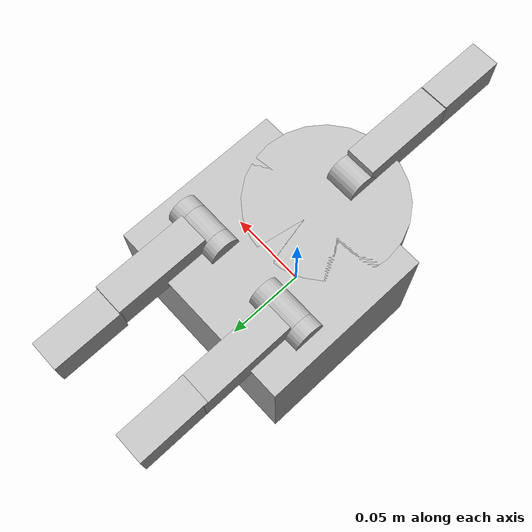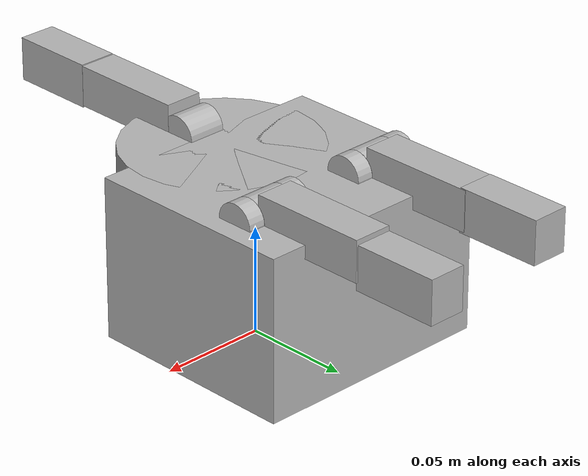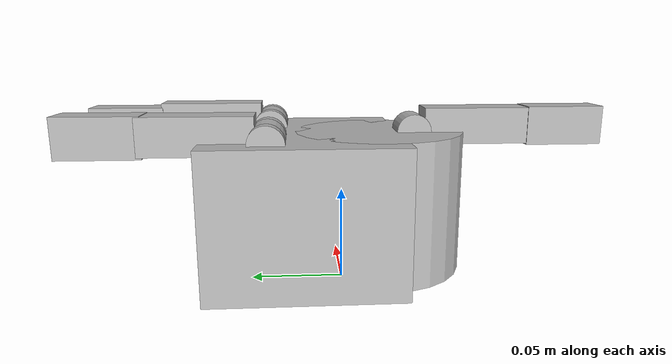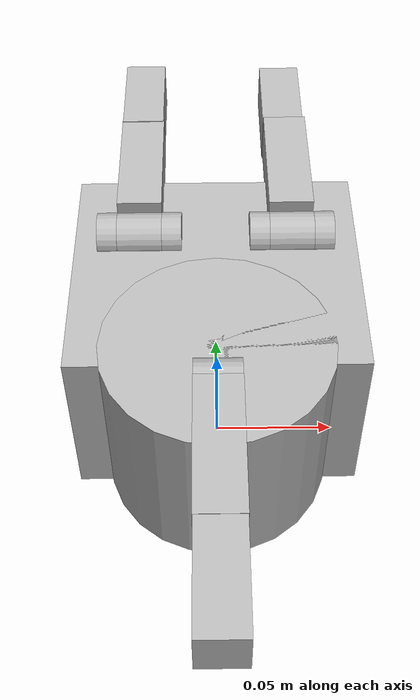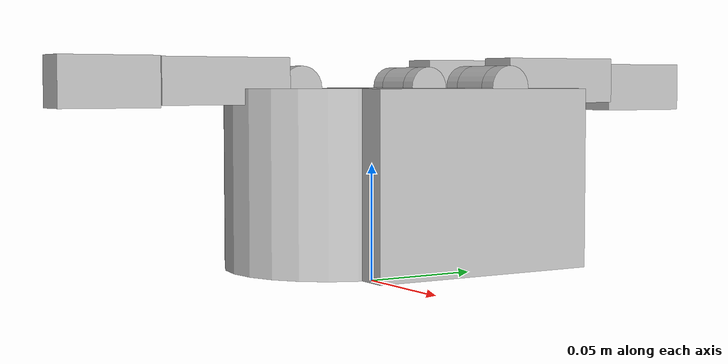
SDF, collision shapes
<?xml version="1.0" ?>
<sdf version="1.5">
  <model name="irobot_hand">
    <static>false</static>
<link name="base_link">
      <inertial>
        <mass>0.1</mass>
        <inertia>
          <ixx>0.001000</ixx>
          <ixy>0</ixy>
          <ixz>0</ixz>
          <iyy>0.001000</iyy>
          <iyz>0</iyz>
          <izz>0.001000</izz>
        </inertia>
      </inertial>
      <collision name="collision1">
        <pose>0 0.02 0.045 0 0 0</pose>
        <geometry>
          <box>
            <size>0.114 0.1 0.075</size>
          </box>
        </geometry>
      </collision>
      <collision name="collision2">
        <pose>0 -0.02 0.045 0 0 0</pose>
        <geometry>
          <cylinder>
            <radius>0.0448</radius>
            <length>0.075</length>
          </cylinder>
        </geometry>
      </collision>
      <visual name="base_link_vis">
        <pose>0 -0.038000 -0.034000 0 0 0</pose>
        <geometry>
          <mesh>
            <uri>model://irobot_hand/meshes/palm.stl</uri>
          </mesh>
        </geometry>
      </visual>
    </link>
    <link name="finger0/base_rotation_link">
      <pose>0.030750 0.038000 0.069477 0 0 0</pose>
      <inertial>
        <mass>0.1</mass>
        <inertia>
          <ixx>0.001000</ixx>
          <ixy>0</ixy>
          <ixz>0</ixz>
          <iyy>0.001000</iyy>
          <iyz>0</iyz>
          <izz>0.001000</izz>
        </inertia>
      </inertial>
      <collision name="collision_1">
        <pose>0 0 -.0025 0 0 0</pose>
        <geometry>
          <cylinder>
            <length>0.0145</length>
            <radius>0.025</radius>
          </cylinder>
        </geometry>
      </collision>
      <collision name="collision_2">
        <pose>0 0 -.0104 0 0 0</pose>
        <geometry>
          <cylinder>
            <length>0.0145</length>
            <radius>0.0165</radius>
          </cylinder>
        </geometry>
      </collision>
      <collision name="collision_3">
        <pose>0 0 .0135 1.5707 0 1.5707</pose>
        <geometry>
          <cylinder>
            <length>0.02</length>
            <radius>0.002</radius>
          </cylinder>
        </geometry>
      </collision>
      <collision name="collision_4">
        <pose>0.013 0 .0135 1.5707 0 1.5707</pose>
        <geometry>
          <cylinder>
            <length>0.008</length>
            <radius>0.009</radius>
          </cylinder>
        </geometry>
      </collision>
      <collision name="collision_5">
        <pose>-0.013 0 .0135 1.5707 0 1.5707</pose>
        <geometry>
          <cylinder>
            <length>0.008</length>
            <radius>0.009</radius>
          </cylinder>
        </geometry>
      </collision>
      <visual name="finger0/base_rotation_link_vis">
        <pose>0 0 0 1.57 0 0</pose>
        <geometry>
          <mesh>
            <uri>model://irobot_hand/meshes/finger_base.stl</uri>
          </mesh>
        </geometry>
      </visual>
    </link>
    <link name="finger0/proximal_link">
      <pose>0.030750 0.038000 0.082977 1.57 0 -3.140000</pose>
      <inertial>
        <mass>0.1</mass>
        <inertia>
          <ixx>0.001000</ixx>
          <ixy>0</ixy>
          <ixz>0</ixz>
          <iyy>0.001000</iyy>
          <iyz>0</iyz>
          <izz>0.001000</izz>
        </inertia>
      </inertial>
      <collision name="collision1">
        <pose>0 0.0028 0.033 0 0 0</pose>
        <geometry>
          <box>
            <size>0.018 0.019 0.055</size>
          </box>
        </geometry>
      </collision>
      <collision name="collision2">
        <pose>0 0 0 0 1.5707 0</pose>
        <geometry>
          <cylinder>
            <radius>0.009</radius>
            <length>0.018</length>
          </cylinder>
        </geometry>
      </collision>
      <visual name="visual">
        <pose>0 0 0 1.57 -1.57 0</pose>
        <geometry>
          <mesh>
            <uri>model://irobot_hand/meshes/finger_proximal.stl</uri>
          </mesh>
        </geometry>
      </visual>
    </link>

    <link name="finger0/distal_link">
      <pose>0.03026 0.09900 0.08039 1.57 0 -3.140000</pose>
      <inertial>
        <mass>0.1</mass>
        <inertia>
          <ixx>0.001000</ixx>
          <ixy>0</ixy>
          <ixz>0</ixz>
          <iyy>0.001000</iyy>
          <iyz>0</iyz>
          <izz>0.001000</izz>
        </inertia>
      </inertial>
      <collision name="collision">
        <pose>0 0.0025 0.019 3.141590 0.001593 3.141590</pose>
        <geometry>
          <box>
            <size>0.0175 0.02023 0.04043</size>
          </box>
        </geometry>
      </collision>
      <visual name="visual">
        <pose>0 0 0 3.141590 0.001593 3.141590</pose>
        <geometry>
          <mesh>
            <uri>model://irobot_hand/meshes/finger_distal.stl</uri>
          </mesh>
        </geometry>
      </visual>
    </link>

    <link name="finger1/base_rotation_link">
      <pose>-0.030750 0.038000 0.069477 0 0 0</pose>
      <inertial>
        <mass>0.1</mass>
        <inertia>
          <ixx>0.001000</ixx>
          <ixy>0</ixy>
          <ixz>0</ixz>
          <iyy>0.001000</iyy>
          <iyz>0</iyz>
          <izz>0.001000</izz>
        </inertia>
      </inertial>
      <collision name="collision_1">
        <pose>0 0 -.0025 0 0 0</pose>
        <geometry>
          <cylinder>
            <length>0.0145</length>
            <radius>0.025</radius>
          </cylinder>
        </geometry>
      </collision>
      <collision name="collision_2">
        <pose>0 0 -.0104 0 0 0</pose>
        <geometry>
          <cylinder>
            <length>0.0145</length>
            <radius>0.0165</radius>
          </cylinder>
        </geometry>
      </collision>
      <collision name="collision_3">
        <pose>0 0 .0135 1.5707 0 1.5707</pose>
        <geometry>
          <cylinder>
            <length>0.02</length>
            <radius>0.002</radius>
          </cylinder>
        </geometry>
      </collision>
      <collision name="collision_4">
        <pose>0.013 0 .0135 1.5707 0 1.5707</pose>
        <geometry>
          <cylinder>
            <length>0.008</length>
            <radius>0.009</radius>
          </cylinder>
        </geometry>
      </collision>
      <collision name="collision_5">
        <pose>-0.013 0 .0135 1.5707 0 1.5707</pose>
        <geometry>
          <cylinder>
            <length>0.008</length>
            <radius>0.009</radius>
          </cylinder>
        </geometry>
      </collision>
      <visual name="visual">
        <pose>0 0 0 1.57 0 0</pose>
        <geometry>
          <mesh>
            <uri>model://irobot_hand/meshes/finger_base.stl</uri>
          </mesh>
        </geometry>
      </visual>
    </link>

    <link name="finger1/proximal_link">
      <pose>-0.030750 0.038000 0.082977 1.57 0 -3.140000</pose>
      <inertial>
        <mass>0.1</mass>
        <inertia>
          <ixx>0.001000</ixx>
          <ixy>0</ixy>
          <ixz>0</ixz>
          <iyy>0.001000</iyy>
          <iyz>0</iyz>
          <izz>0.001000</izz>
        </inertia>
      </inertial>
      <collision name="collision1">
        <pose>0 0.0028 0.033 0 0 0</pose>
        <geometry>
          <box>
            <size>0.018 0.019 0.055</size>
          </box>
        </geometry>
      </collision>
      <collision name="collision2">
        <pose>0 0 0 0 1.5707 0</pose>
        <geometry>
          <cylinder>
            <radius>0.009</radius>
            <length>0.018</length>
          </cylinder>
        </geometry>
      </collision>
      <visual name="visual">
        <pose>0 0 0 1.57 -1.57 -0</pose>
        <geometry>
          <mesh>
            <uri>model://irobot_hand/meshes/finger_proximal.stl</uri>
          </mesh>
        </geometry>
      </visual>
    </link>

    <link name="finger1/distal_link">
      <pose>-0.030874 0.097000 0.083039 1.57 0 -3.140000</pose>
      <inertial>
        <mass>0.1</mass>
        <inertia>
          <ixx>0.001000</ixx>
          <ixy>0</ixy>
          <ixz>0</ixz>
          <iyy>0.001000</iyy>
          <iyz>0</iyz>
          <izz>0.001000</izz>
        </inertia>
      </inertial>
      <collision name="collision">
        <pose>0 0.0025 0.019 3.141590 0.001593 3.141590</pose>
        <geometry>
          <box>
            <size>0.0175 0.02023 0.04043</size>
          </box>
        </geometry>
      </collision>
      <visual name="visual">
        <pose>0 0 0 3.141590 0.001593 3.141590</pose>
        <geometry>
          <mesh>
            <uri>model://irobot_hand/meshes/finger_distal.stl</uri>
          </mesh>
        </geometry>
      </visual>
    </link>

    <link name="finger2/proximal_link">
      <pose>0 -0.038000 0.082755 1.57 0 0</pose>
      <inertial>
        <mass>0.1</mass>
        <inertia>
          <ixx>0.001000</ixx>
          <ixy>0</ixy>
          <ixz>0</ixz>
          <iyy>0.001000</iyy>
          <iyz>0</iyz>
          <izz>0.001000</izz>
        </inertia>
      </inertial>
      <collision name="collision1">
        <pose>0 0.0028 0.033 0 0 0</pose>
        <geometry>
          <box>
            <size>0.018 0.019 0.055</size>
          </box>
        </geometry>
      </collision>
      <collision name="collision2">
        <pose>0 0 0 0 1.5707 0</pose>
        <geometry>
          <cylinder>
            <radius>0.009</radius>
            <length>0.018</length>
          </cylinder>
        </geometry>
      </collision>
      <visual name="visual">
        <pose>0 0 0 1.57 -1.57 -0</pose>
        <geometry>
          <mesh>
            <uri>model://irobot_hand/meshes/finger_proximal.stl</uri>
          </mesh>
        </geometry>
      </visual>
    </link>

    <link name="finger2/distal_link">
      <pose>0 -0.100000 0.082817 1.57 0 0</pose>
      <inertial>
        <mass>0.1</mass>
        <inertia>
          <ixx>0.001000</ixx>
          <ixy>0</ixy>
          <ixz>0</ixz>
          <iyy>0.001000</iyy>
          <iyz>0</iyz>
          <izz>0.001000</izz>
        </inertia>
      </inertial>
      <collision name="collision">
        <pose>0 0.0025 0.019 3.141590 0.001593 3.141590</pose>
        <geometry>
          <box>
            <size>0.0175 0.02023 0.04043</size>
          </box>
        </geometry>
      </collision>
      <visual name="visual">
        <pose>0 0 0 3.141590 0.001593 3.141590</pose>
        <geometry>
          <mesh>
            <uri>model://irobot_hand/meshes/finger_distal.stl</uri>
          </mesh>
        </geometry>
      </visual>
    </link>

    <joint name="finger0/joint_base_rotation" type="revolute">
      <child>finger0/base_rotation_link</child>
      <parent>base_link</parent>
      <axis>
        <xyz>0 0 -1</xyz>
        <limit>
          <lower>0</lower>
          <upper>0.57</upper>
        </limit>
        <dynamics />
        <use_parent_model_frame>true</use_parent_model_frame>
      </axis>
    </joint>

    <joint name="finger0/joint_base" type="revolute">
      <child>finger0/proximal_link</child>
      <parent>finger0/base_rotation_link</parent>
      <axis>
        <xyz>0.999999 0.001593 -0</xyz>
        <limit>
          <lower>0</lower>
          <upper>1.77</upper>
        </limit>
        <dynamics />
        <use_parent_model_frame>true</use_parent_model_frame>
      </axis>
    </joint>

    <joint name="finger0/joint_tip" type="revolute">
      <child>finger0/distal_link</child>
      <parent>finger0/proximal_link</parent>
      <axis>
        <xyz>0.999999 0.001593 -0</xyz>
        <limit>
          <lower>0</lower>
          <upper>0.57</upper>
        </limit>
        <dynamics />
        <use_parent_model_frame>true</use_parent_model_frame>
      </axis>
    </joint>

    <joint name="finger1/joint_base_rotation" type="revolute">
      <child>finger1/base_rotation_link</child>
      <parent>base_link</parent>
      <axis>
        <xyz>0 0 1</xyz>
        <limit>
          <lower>0</lower>
          <upper>0.57</upper>
        </limit>
        <dynamics />
        <use_parent_model_frame>true</use_parent_model_frame>
      </axis>
    </joint>
    <joint name="finger1/joint_base" type="revolute">
      <child>finger1/proximal_link</child>
      <parent>finger1/base_rotation_link</parent>
      <axis>
        <xyz>0.999999 0.001593 -0</xyz>
        <limit>
          <lower>0</lower>
          <upper>1.77</upper>
        </limit>
        <dynamics />
        <use_parent_model_frame>true</use_parent_model_frame>
      </axis>
    </joint>

     <joint name="finger1/joint_tip" type="revolute">
      <child>finger1/distal_link</child>
      <parent>finger1/proximal_link</parent>
      <axis>
        <xyz>0.999999 0.001593 -0</xyz>
        <limit>
          <lower>0</lower>
          <upper>0.97</upper>
        </limit>
        <dynamics />
        <use_parent_model_frame>true</use_parent_model_frame>
      </axis>
    </joint>

    <joint name="finger2/joint_base" type="revolute">
      <child>finger2/proximal_link</child>
      <parent>base_link</parent>
      <axis>
        <xyz>-1 0 0</xyz>
        <limit>
          <lower>0</lower>
          <upper>1.45</upper>
        </limit>
        <dynamics />
        <use_parent_model_frame>true</use_parent_model_frame>
      </axis>
    </joint>

     <joint name="finger2/joint_tip" type="revolute">
      <child>finger2/distal_link</child>
      <parent>finger2/proximal_link</parent>
      <axis>
        <xyz>0.999999 0.001593 -0</xyz>
        <limit>
          <lower>-1.15</lower>
          <upper>0</upper>
        </limit>
        <dynamics />
        <use_parent_model_frame>true</use_parent_model_frame>
      </axis>
    </joint>

  </model>
</sdf>
